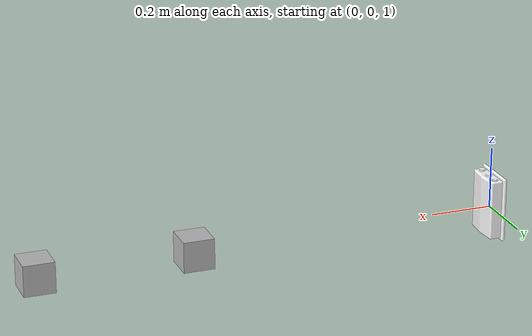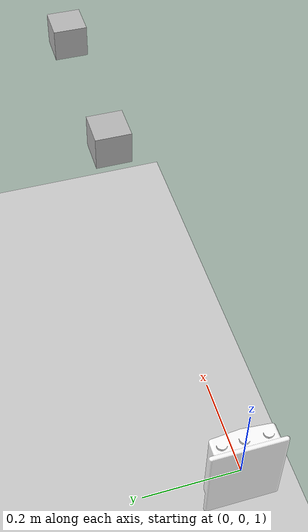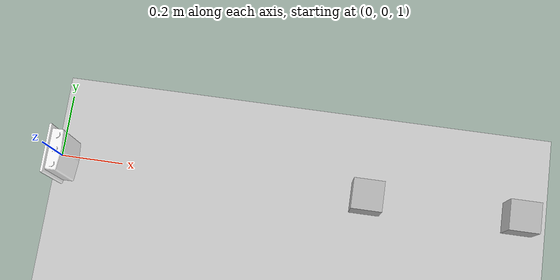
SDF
<?xml version="1.0" ?>
<sdf version="1.9">
	<world name="rfid-test-world">
		<physics name="1ms" type="ignore">
			<max_step_size>0.001</max_step_size>
			<real_time_factor>1.0</real_time_factor>
		</physics>

		<plugin filename="gz-sim-physics-system" name="gz::sim::systems::Physics"></plugin>
		<plugin filename="gz-sim-sensors-system" name="gz::sim::systems::Sensors">
			<render_engine>ogre2</render_engine>
		</plugin>

		<plugin filename="gz-sim-user-commands-system" name="gz::sim::systems::UserCommands"></plugin>
		<plugin filename="gz-sim-scene-broadcaster-system" name="gz::sim::systems::SceneBroadcaster"></plugin>

		<include>
			<uri>model://rfid-scanner</uri>
			<pose>0 0 1 0 0 0</pose>
			<static>true</static>
		</include>

		<model name="testtag">
			<static>true</static>
			<pose> 1 0 1 0 0 0</pose>
			<link name='link'>
				<inertial>
					<mass>1.0</mass>
				</inertial>
				<visual name="rfid-tag-visual">
					<geometry>
						<box><size>0.1 0.1 0.1</size></box>
					</geometry>
					<material>
						<emissive>1 0 0 1</emissive>
					</material>
				</visual>
			</link>
			<plugin filename="librfidTag" name="RFIDTag">
				<uid>0x32143</uid>
				<data> some tag data</data>
			</plugin>
		</model>

		<model name="testtag2">
			<static>true</static>
			<pose> 1.5 0 1 0 0 0</pose>
			<link name='link'>
				<inertial>
					<mass>1.0</mass>
				</inertial>
				<visual name="rfid-tag-visual">
					<geometry>
						<box><size>0.1 0.1 0.1</size></box>
					</geometry>
					<material>
						<emissive>1 0 0 1</emissive>
					</material>
				</visual>
			</link>
			<plugin filename="librfidTag" name="RFIDTag">
				<uid>0x837428o3</uid>
				<data>otherdata</data>
			</plugin>
		</model>

		<scene>
			<ambient>0.5 0.5 0.5 1.0</ambient>
			<background>0.8 0.8 0.8</background>
			<sky></sky>
		</scene>

		<light type="directional" name="sun">
			<cast_shadows>true</cast_shadows>
			<pose>0 0 10 0 0 0</pose>
			<diffuse>0.8 0.8 0.8 1</diffuse>
			<specular>0.05 0.05 0.05 1</specular>  <!-- or 0 0 0 1 -->
			<direction>-0.5 0.1 -0.9</direction>
		</light>

		<model name="groundplane">
			<static>true</static>
			<link name="link">
				<collision name="collision">
					<geometry>
						<plane>
							<normal>0 0 1</normal>
						</plane>
					</geometry>
				</collision>
				<visual name="groundplane">
					<pose degrees="true">0 0 0 0 0 90</pose>
					<cast_shadows>false</cast_shadows>
					<geometry>
						<plane>
							<normal>0 0 1</normal>
							<size>100 100</size>
						</plane>
				</geometry>
				<material>
				<emissive>0.71 0.70 0.75 1</emissive>
				</material>
				</visual>
			</link>
		</model>

	</world>
</sdf>

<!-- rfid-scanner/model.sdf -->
<sdf version="1.9">
	<model name="rfid-scanner">
		<static>false</static>
		<link name="rfid-scanner-link">
			<collision name="rfid-scanner-collision">
				<geometry>
					<mesh>
						<uri>model://rfid-scanner/meshes/model1.obj</uri>
					  <scale>1 1 1</scale>
					</mesh>
				</geometry>
			</collision>

			<visual name="rfid-scanner-visual">
				<pose degrees="true">0 0 0 90 0 180</pose>
				<geometry>
					<mesh>
						<uri>model://rfid-scanner/meshes/model1.obj</uri>
					  <scale>1 1 1</scale>
					</mesh>
				</geometry>
				<material>
					<ambient>1 1 1 1</ambient>
					<diffuse>1 1 1 1</diffuse>
					<specular>0.1 0.1 0.1 1</specular>
					<emissive>0 0 0 1</emissive>
				</material>
			</visual>

			<inertial>
				<mass>2</mass>
				<inertia>
					<ixx>1</ixx>
					<iyy>1</iyy>
					<izz>1</izz>
				</inertia>
			</inertial>

		</link>

		<plugin filename="librfidScanner" name="RFIDScanner"></plugin>

	</model>
</sdf>
